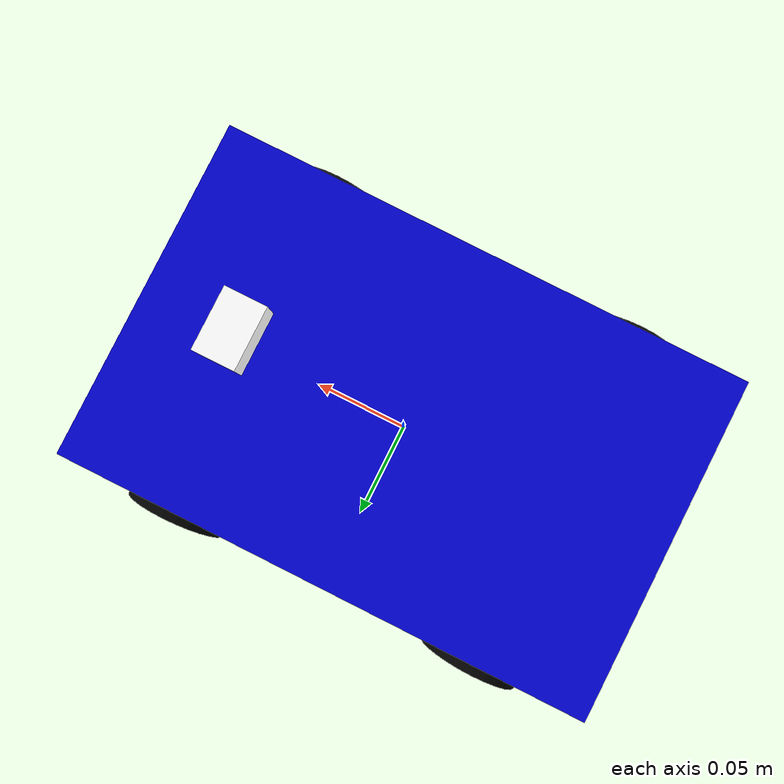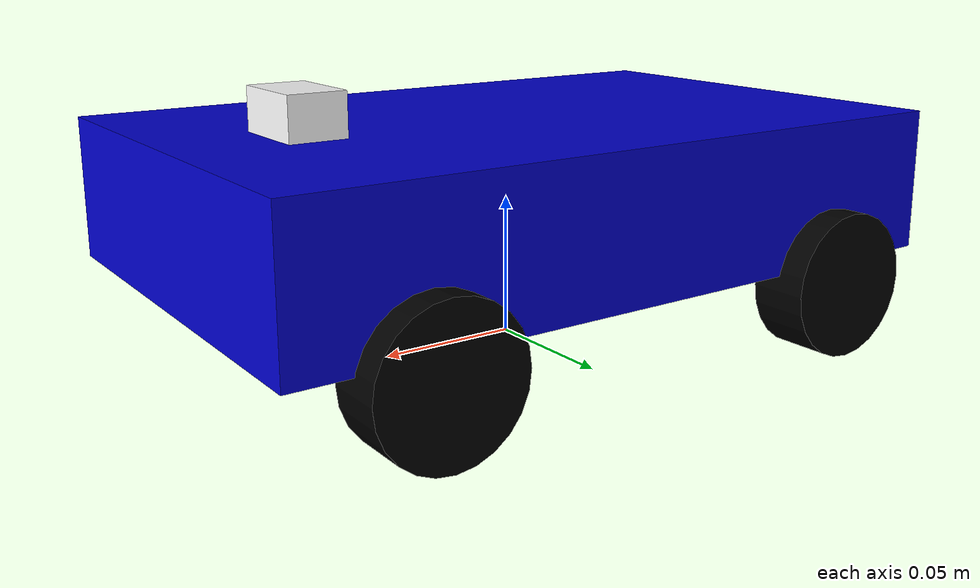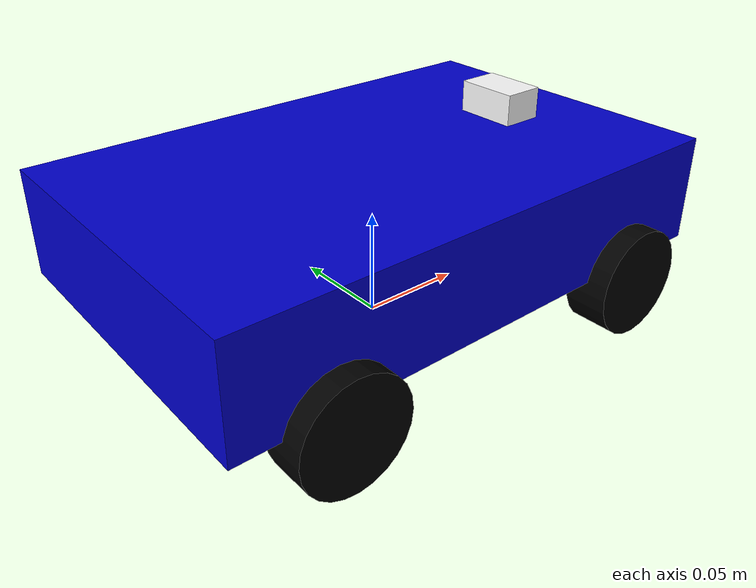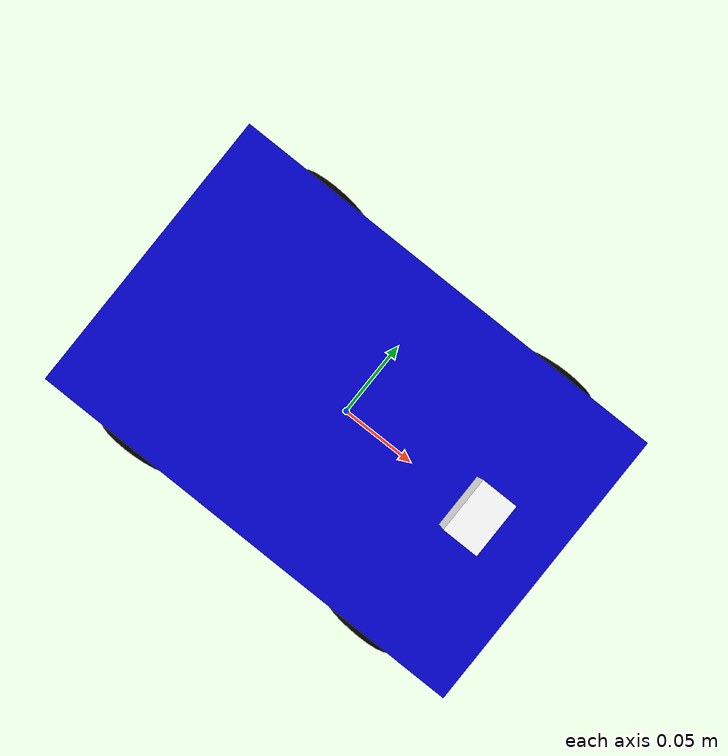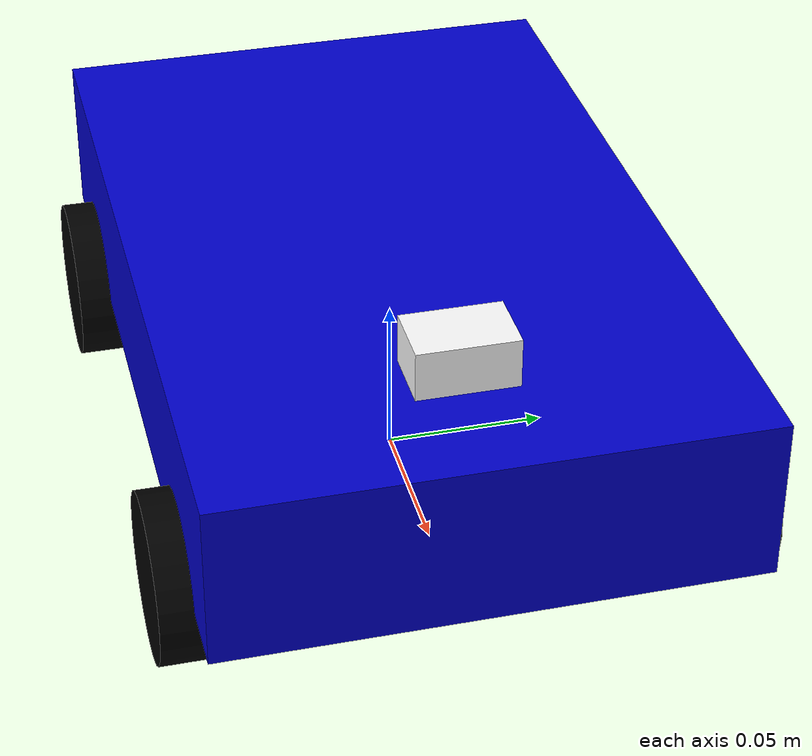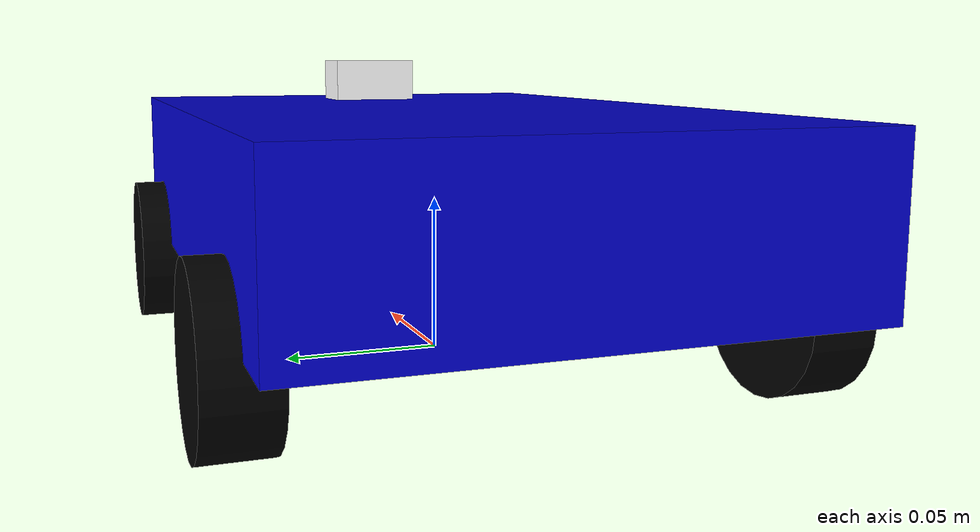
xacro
<?xml version="1.0"?>

<robot name="cleanrobot"
        xmlns:xi="http://www.w3.org/2001/XInclude"
        xmlns:gazebo="http://playerstage.sourceforge.net/gazebo/xmlschema/#gz"
        xmlns:model="http://playerstage.sourceforge.net/gazebo/xmlschema/#model"
        xmlns:sensor="http://playerstage.sourceforge.net/gazebo/xmlschema/#sensor"
        xmlns:body="http://playerstage.sourceforge.net/gazebo/xmlschema/#body"
        xmlns:geom="http://playerstage.sourceforge.net/gazebo/xmlschema/#geom"
        xmlns:joint="http://playerstage.sourceforge.net/gazebo/xmlschema/#joint"
        xmlns:controller="http://playerstage.sourceforge.net/gazebo/xmlschema/#controller"
        xmlns:interface="http://playerstage.sourceforge.net/gazebo/xmlschema/#interface"
        xmlns:rendering="http://playerstage.sourceforge.net/gazebo/xmlschema/#rendering"
        xmlns:renderable="http://playerstage.sourceforge.net/gazebo/xmlschema/#renderable"
        xmlns:physics="http://playerstage.sourceforge.net/gazebo/xmlschema/#physics"
        xmlns:xacro="http://ros.org/wiki/xacro">

      <include filename="$(find qcl_description)/urdf/cleanrobot.xacro" />

      <!-- Body of SmartCar, with plates, standoffs and Create (including sim sensors) -->
      <cleanrobot_body/>

      <cleanrobot_sim/>

</robot>

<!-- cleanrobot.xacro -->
<robot name="cleanrobot" xmlns:xacro="http://ros.org/wiki/xacro">
      <property name="M_PI" value="3.14159"/>

      <!-- Macro for SmartCar body. Including Gazebo extensions, but does not include Kinect -->
      <include filename="$(find qcl_description)/urdf/gazebo.urdf.xacro"/>

      <property name="base_x" value="0.33" />
      <property name="base_y" value="0.33" />

      <xacro:macro name="cleanrobot_body">

      <link name="base_footprint">
	    <inertial>
	      <mass value="0.0001" />
	      <origin xyz="0 0 0" />
	      <inertia ixx="0.0001" ixy="0.0" ixz="0.0"
		      iyy="0.0001" iyz="0.0"
		      izz="0.0001" />
	    </inertial>

	    <visual>
	      <origin xyz="0 0 0" rpy="0 0 0" />
	      <geometry>
		<box size="0.001 0.001 0.001" />
	      </geometry>
	      <material name="Green" />
	    </visual>

	    <collision>
	      <origin xyz="0 0 0" rpy="0 0 0" />
	      <geometry>
	       <box size="0.001 0.001 0.001" />
	      </geometry>
	    </collision>
        </link>

        <link name="base_link">

        <inertial>
          <origin xyz="0 0 0.055"/>
          <mass value="1.0" />
          <inertia ixx="1.0" ixy="0.0" ixz="0.0" iyy="1.0" iyz="0.0" izz="1.0"/>
        </inertial>

        <visual>
          <geometry>
            <box size="0.25 .16 .05"/>
          </geometry>
          <origin rpy="0 0 0" xyz="0 0 0.055"/>
          <material name="blue">
          <color rgba="0 0 .8 1"/>
          </material>
       </visual>

       <collision>
          <origin rpy="0 0 0" xyz="0 0 0.055"/>
          <geometry>
            <box size="0.25 .16 .05" />
          </geometry>
        </collision>

      </link>

       <joint name="base_footprint_joint" type="fixed">
	    <origin xyz="0 0 0" rpy="0 0 0" />
	    <parent link="base_footprint"/>
	    <child link="base_link" />
       </joint>

     <link name="left_front_wheel">

        <inertial>
         <origin xyz="0.08 0.08 0.025"/>
          <mass value="0.1" />
           <inertia ixx="1.0" ixy="0.0" ixz="0.0" iyy="1.0" iyz="0.0" izz="1.0"/>
        </inertial>

        <visual>
          <geometry>
            <cylinder length=".02" radius="0.025"/>
          </geometry>
          <material name="black">
            <color rgba="0 0 0 1"/>
          </material>
        </visual>

        <collision>
          <origin rpy="0 1.57075 1.57075" xyz="0.08 0.08 0.025"/>
          <geometry>
             <cylinder length=".02" radius="0.025"/>
          </geometry>
        </collision>
      </link>

      <joint name="left_front_wheel_joint" type="continuous">
        <axis xyz="0 0 1"/>
        <parent link="base_link"/>
        <child link="left_front_wheel"/>
        <origin rpy="0 1.57075 1.57075" xyz="0.08 0.08 0.025"/>
        <limit effort="100" velocity="100"/>
        <joint_properties damping="0.0" friction="0.0"/>
      </joint>

      <link name="right_front_wheel">
        <inertial>
          <origin  xyz="0.08 -0.08 0.025"/>
          <mass value="0.1" />
           <inertia ixx="1.0" ixy="0.0" ixz="0.0" iyy="1.0" iyz="0.0" izz="1.0"/>
        </inertial>
        <visual>
          <geometry>
            <cylinder length=".02" radius="0.025"/>
          </geometry>
          <material name="black">
            <color rgba="0 0 0 1"/>
          </material>
        </visual>
        <collision>
          <origin rpy="0 1.57075 1.57075" xyz="0.08 -0.08 0.025"/>
          <geometry>
             <cylinder length=".02" radius="0.025"/>
          </geometry>
        </collision>
      </link>

      <joint name="right_front_wheel_joint" type="continuous">
        <axis xyz="0 0 1"/>
        <parent link="base_link"/>
        <child link="right_front_wheel"/>
        <origin rpy="0 1.57075 1.57075" xyz="0.08 -0.08 0.025"/>
        <limit effort="100" velocity="100"/>
        <joint_properties damping="0.0" friction="0.0"/>
     </joint>

     <link name="left_back_wheel">
        <inertial>
         <origin  xyz="-0.08 0.08 0.025"/>
          <mass value="0.1" />
           <inertia ixx="1.0" ixy="0.0" ixz="0.0" iyy="1.0" iyz="0.0" izz="1.0"/>
        </inertial>

        <visual>
          <geometry>
            <cylinder length=".02" radius="0.025"/>
          </geometry>
          <material name="black">
            <color rgba="0 0 0 1"/>
          </material>
       </visual>

       <collision>
           <origin rpy="0 1.57075 1.57075" xyz="-0.08 0.08 0.025"/>
          <geometry>
             <cylinder length=".02" radius="0.025"/>
          </geometry>
        </collision>
      </link>

      <joint name="left_back_wheel_joint" type="continuous">
        <axis xyz="0 0 1"/>
        <parent link="base_link"/>
        <child link="left_back_wheel"/>
        <origin rpy="0 1.57075 1.57075" xyz="-0.08 0.08 0.025"/>
        <limit effort="100" velocity="100"/>
        <joint_properties damping="0.0" friction="0.0"/>
      </joint>

      <link name="right_back_wheel">

        <inertial>
           <origin xyz="-0.08 -0.08 0.025"/>
           <mass value="0.1" />
           <inertia ixx="1.0" ixy="0.0" ixz="0.0" iyy="1.0" iyz="0.0" izz="1.0"/>
        </inertial>

        <visual>
          <geometry>
            <cylinder length=".02" radius="0.025"/>
          </geometry>
          <material name="black">
            <color rgba="0 0 0 1"/>
          </material>
       </visual>

       <collision>
          <origin rpy="0 1.57075 1.57075" xyz="-0.08 -0.08 0.025"/>
          <geometry>
             <cylinder length=".02" radius="0.025"/>
          </geometry>
        </collision>

      </link>

      <joint name="right_back_wheel_joint" type="continuous">
        <axis xyz="0 0 1"/>
        <parent link="base_link"/>
        <child link="right_back_wheel"/>
        <origin rpy="0 1.57075 1.57075" xyz="-0.08 -0.08 0.025"/>
        <limit effort="100" velocity="100"/>
        <joint_properties damping="0.0" friction="0.0"/>
      </joint>

      <link name="head">
        <inertial>
           <origin xyz="0.08 0 0.08"/>
          <mass value="0.1" />
          <inertia ixx="1.0" ixy="0.0" ixz="0.0" iyy="1.0" iyz="0.0" izz="1.0"/>
        </inertial>

        <visual>
          <geometry>
            <box size=".02 .03 .03"/>
          </geometry>
          <material name="white">
            <color rgba="1 1 1 1"/>
          </material>
         </visual>

         <collision>
          <origin xyz="0.08 0 0.08"/>
          <geometry>
             <cylinder length=".02" radius="0.025"/>
          </geometry>
        </collision>
      </link>

      <joint name="tobox" type="fixed">

        <parent link="base_link"/>
        <child link="head"/>
        <origin xyz="0.08 0 0.08"/>
      </joint>

      </xacro:macro>

</robot>
